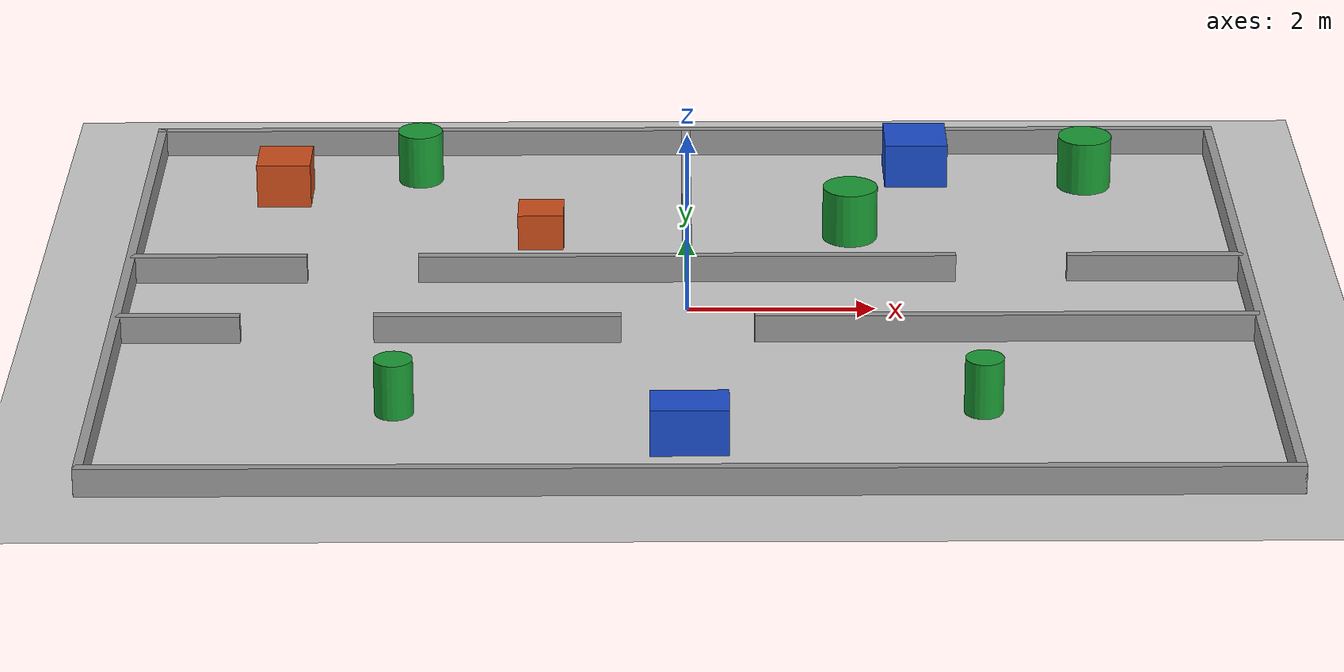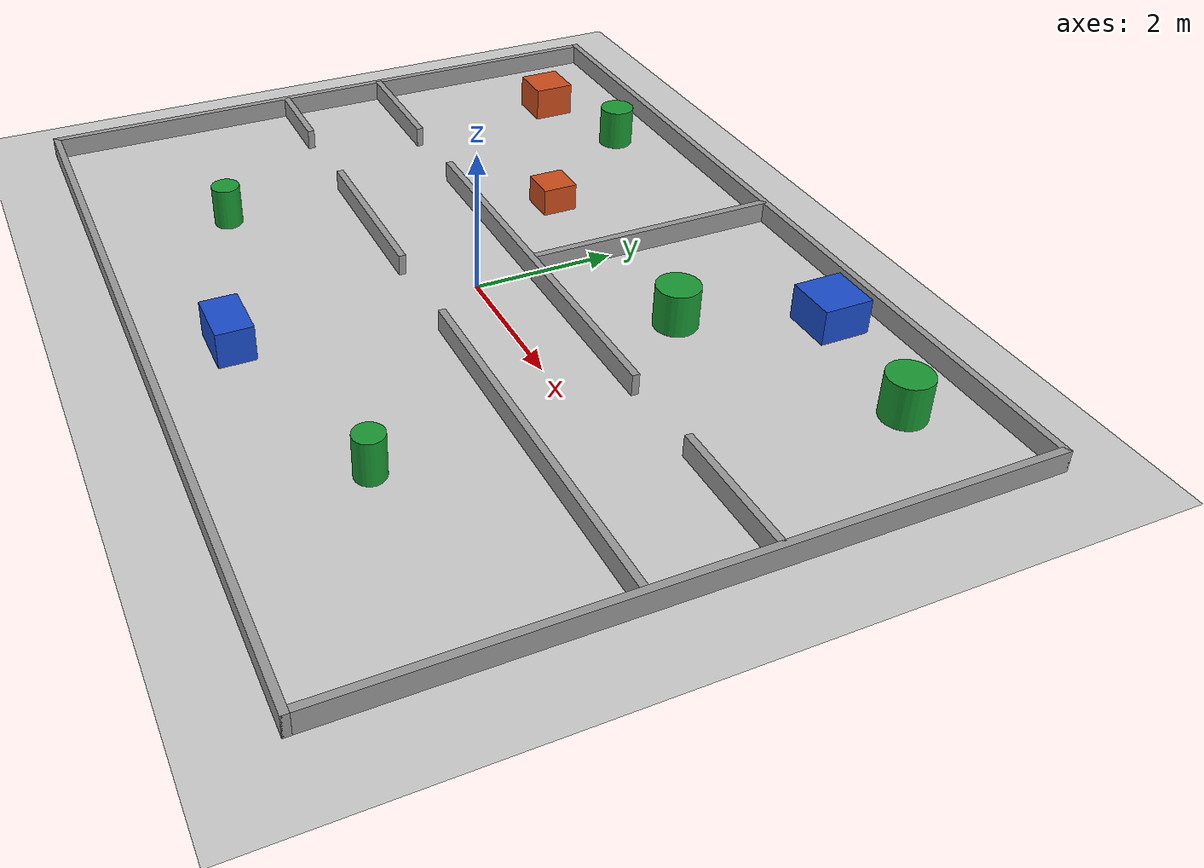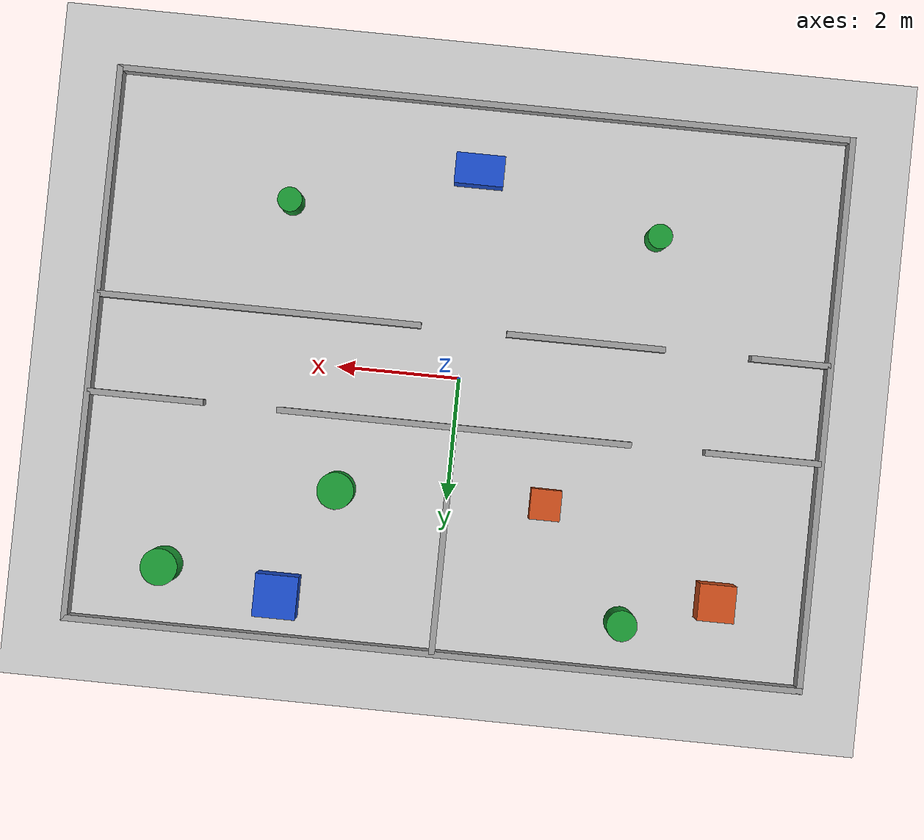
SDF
<?xml version="1.0" ?>
<sdf version="1.8">
  <world name="obstacles2">

    <plugin filename="ignition-gazebo-physics-system"
            name="ignition::gazebo::systems::Physics"/>
    <plugin filename="ignition-gazebo-sensors-system"
            name="ignition::gazebo::systems::Sensors">
      <render_engine>ogre2</render_engine>
    </plugin>
    <plugin filename="ignition-gazebo-scene-broadcaster-system"
            name="ignition::gazebo::systems::SceneBroadcaster"/>
    <plugin filename="ignition-gazebo-user-commands-system"
            name="ignition::gazebo::systems::UserCommands"/>

    <light type="directional" name="sun">
      <cast_shadows>true</cast_shadows>
      <pose>0 0 10 0 0 0</pose>
      <diffuse>0.8 0.8 0.8 1</diffuse>
      <specular>0.2 0.2 0.2 1</specular>
      <direction>-0.5 0.1 -0.9</direction>
    </light>

    <model name="ground_plane">
      <static>true</static>
      <link name="link">
        <collision name="collision">
          <geometry><plane><normal>0 0 1</normal><size>100 100</size></plane></geometry>
          <surface><friction><ode><mu>100</mu><mu2>50</mu2></ode></friction></surface>
        </collision>
        <visual name="visual">
          <geometry><plane><normal>0 0 1</normal><size>100 100</size></plane></geometry>
          <material>
            <ambient>0.8 0.8 0.8 1</ambient>
            <diffuse>0.8 0.8 0.8 1</diffuse>
          </material>
        </visual>
      </link>
    </model>

    <!-- Recinto cerrado de 12 x 9 m, paredes de 0.3 m de alto -->
    <model name="walls">
      <static>true</static>
      <link name="wall_north">
        <pose>0 4.5 0.15 0 0 0</pose>
        <collision name="c"><geometry><box><size>12.1 0.1 0.3</size></box></geometry></collision>
        <visual name="v"><geometry><box><size>12.1 0.1 0.3</size></box></geometry>
          <material><ambient>0.6 0.6 0.6 1</ambient><diffuse>0.6 0.6 0.6 1</diffuse></material></visual>
      </link>
      <link name="wall_south">
        <pose>0 -4.5 0.15 0 0 0</pose>
        <collision name="c"><geometry><box><size>12.1 0.1 0.3</size></box></geometry></collision>
        <visual name="v"><geometry><box><size>12.1 0.1 0.3</size></box></geometry>
          <material><ambient>0.6 0.6 0.6 1</ambient><diffuse>0.6 0.6 0.6 1</diffuse></material></visual>
      </link>
      <link name="wall_east">
        <pose>6 0 0.15 0 0 0</pose>
        <collision name="c"><geometry><box><size>0.1 9.1 0.3</size></box></geometry></collision>
        <visual name="v"><geometry><box><size>0.1 9.1 0.3</size></box></geometry>
          <material><ambient>0.6 0.6 0.6 1</ambient><diffuse>0.6 0.6 0.6 1</diffuse></material></visual>
      </link>
      <link name="wall_west">
        <pose>-6 0 0.15 0 0 0</pose>
        <collision name="c"><geometry><box><size>0.1 9.1 0.3</size></box></geometry></collision>
        <visual name="v"><geometry><box><size>0.1 9.1 0.3</size></box></geometry>
          <material><ambient>0.6 0.6 0.6 1</ambient><diffuse>0.6 0.6 0.6 1</diffuse></material></visual>
      </link>
    </model>

    <!-- Paredes interiores: pasillo este-oeste de 1.6 m (y de -0.8 a 0.8).
         Pared norte del pasillo (y = 0.8) con dos puertas de 1.2 m en
         x = -3.5 y x = 3.5, una por habitación. -->
    <model name="corridor_walls">
      <static>true</static>
      <link name="north_west_seg">
        <pose>-5.05 0.8 0.15 0 0 0</pose>
        <collision name="c"><geometry><box><size>1.9 0.1 0.3</size></box></geometry></collision>
        <visual name="v"><geometry><box><size>1.9 0.1 0.3</size></box></geometry>
          <material><ambient>0.6 0.6 0.6 1</ambient><diffuse>0.6 0.6 0.6 1</diffuse></material></visual>
      </link>
      <link name="north_mid_seg">
        <pose>0 0.8 0.15 0 0 0</pose>
        <collision name="c"><geometry><box><size>5.8 0.1 0.3</size></box></geometry></collision>
        <visual name="v"><geometry><box><size>5.8 0.1 0.3</size></box></geometry>
          <material><ambient>0.6 0.6 0.6 1</ambient><diffuse>0.6 0.6 0.6 1</diffuse></material></visual>
      </link>
      <link name="north_east_seg">
        <pose>5.05 0.8 0.15 0 0 0</pose>
        <collision name="c"><geometry><box><size>1.9 0.1 0.3</size></box></geometry></collision>
        <visual name="v"><geometry><box><size>1.9 0.1 0.3</size></box></geometry>
          <material><ambient>0.6 0.6 0.6 1</ambient><diffuse>0.6 0.6 0.6 1</diffuse></material></visual>
      </link>
      <link name="south_west_seg">
        <pose>-5.35 -0.8 0.15 0 0 0</pose>
        <collision name="c"><geometry><box><size>1.3 0.1 0.3</size></box></geometry></collision>
        <visual name="v"><geometry><box><size>1.3 0.1 0.3</size></box></geometry>
          <material><ambient>0.6 0.6 0.6 1</ambient><diffuse>0.6 0.6 0.6 1</diffuse></material></visual>
      </link>
      <link name="south_mid_seg">
        <pose>-2.0 -0.8 0.15 0 0 0</pose>
        <collision name="c"><geometry><box><size>2.6 0.1 0.3</size></box></geometry></collision>
        <visual name="v"><geometry><box><size>2.6 0.1 0.3</size></box></geometry>
          <material><ambient>0.6 0.6 0.6 1</ambient><diffuse>0.6 0.6 0.6 1</diffuse></material></visual>
      </link>
      <link name="south_east_seg">
        <pose>3.35 -0.8 0.15 0 0 0</pose>
        <collision name="c"><geometry><box><size>5.3 0.1 0.3</size></box></geometry></collision>
        <visual name="v"><geometry><box><size>5.3 0.1 0.3</size></box></geometry>
          <material><ambient>0.6 0.6 0.6 1</ambient><diffuse>0.6 0.6 0.6 1</diffuse></material></visual>
      </link>
      <!-- Divisoria entre habitación 1 (oeste) y habitación 2 (este) -->
      <link name="room_divider">
        <pose>0 2.65 0.15 0 0 0</pose>
        <collision name="c"><geometry><box><size>0.1 3.7 0.3</size></box></geometry></collision>
        <visual name="v"><geometry><box><size>0.1 3.7 0.3</size></box></geometry>
          <material><ambient>0.6 0.6 0.6 1</ambient><diffuse>0.6 0.6 0.6 1</diffuse></material></visual>
      </link>
    </model>

    <!-- Habitación 1 (noroeste): dos cajas y un cilindro -->
    <model name="box_1">
      <static>true</static>
      <pose>-4.5 3.2 0.25 0 0 0</pose>
      <link name="link">
        <collision name="c"><geometry><box><size>0.6 0.6 0.5</size></box></geometry></collision>
        <visual name="v"><geometry><box><size>0.6 0.6 0.5</size></box></geometry>
          <material><ambient>0.8 0.3 0.1 1</ambient><diffuse>0.8 0.3 0.1 1</diffuse></material></visual>
      </link>
    </model>

    <model name="box_2">
      <static>true</static>
      <pose>-1.6 1.9 0.2 0 0 0</pose>
      <link name="link">
        <collision name="c"><geometry><box><size>0.5 0.5 0.4</size></box></geometry></collision>
        <visual name="v"><geometry><box><size>0.5 0.5 0.4</size></box></geometry>
          <material><ambient>0.8 0.3 0.1 1</ambient><diffuse>0.8 0.3 0.1 1</diffuse></material></visual>
      </link>
    </model>

    <model name="cylinder_1">
      <static>true</static>
      <pose>-3.0 3.7 0.3 0 0 0</pose>
      <link name="link">
        <collision name="c"><geometry><cylinder><radius>0.25</radius><length>0.6</length></cylinder></geometry></collision>
        <visual name="v"><geometry><cylinder><radius>0.25</radius><length>0.6</length></cylinder></geometry>
          <material><ambient>0.1 0.6 0.2 1</ambient><diffuse>0.1 0.6 0.2 1</diffuse></material></visual>
      </link>
    </model>

    <!-- Habitación 2 (noreste): dos cilindros y una caja -->
    <model name="cylinder_2">
      <static>true</static>
      <pose>1.8 2.0 0.3 0 0 0</pose>
      <link name="link">
        <collision name="c"><geometry><cylinder><radius>0.3</radius><length>0.6</length></cylinder></geometry></collision>
        <visual name="v"><geometry><cylinder><radius>0.3</radius><length>0.6</length></cylinder></geometry>
          <material><ambient>0.1 0.6 0.2 1</ambient><diffuse>0.1 0.6 0.2 1</diffuse></material></visual>
      </link>
    </model>

    <model name="cylinder_3">
      <static>true</static>
      <pose>4.5 3.5 0.3 0 0 0</pose>
      <link name="link">
        <collision name="c"><geometry><cylinder><radius>0.3</radius><length>0.6</length></cylinder></geometry></collision>
        <visual name="v"><geometry><cylinder><radius>0.3</radius><length>0.6</length></cylinder></geometry>
          <material><ambient>0.1 0.6 0.2 1</ambient><diffuse>0.1 0.6 0.2 1</diffuse></material></visual>
      </link>
    </model>

    <model name="box_3">
      <static>true</static>
      <pose>2.6 3.8 0.25 0 0 0</pose>
      <link name="link">
        <collision name="c"><geometry><box><size>0.7 0.7 0.5</size></box></geometry></collision>
        <visual name="v"><geometry><box><size>0.7 0.7 0.5</size></box></geometry>
          <material><ambient>0.1 0.3 0.8 1</ambient><diffuse>0.1 0.3 0.8 1</diffuse></material></visual>
      </link>
    </model>

    <!-- Área abierta al sur: columnas y una caja, para planificar rodeos -->
    <model name="pillar_1">
      <static>true</static>
      <pose>-3.0 -2.6 0.3 0 0 0</pose>
      <link name="link">
        <collision name="c"><geometry><cylinder><radius>0.2</radius><length>0.6</length></cylinder></geometry></collision>
        <visual name="v"><geometry><cylinder><radius>0.2</radius><length>0.6</length></cylinder></geometry>
          <material><ambient>0.1 0.6 0.2 1</ambient><diffuse>0.1 0.6 0.2 1</diffuse></material></visual>
      </link>
    </model>

    <model name="pillar_2">
      <static>true</static>
      <pose>3.0 -2.6 0.3 0 0 0</pose>
      <link name="link">
        <collision name="c"><geometry><cylinder><radius>0.2</radius><length>0.6</length></cylinder></geometry></collision>
        <visual name="v"><geometry><cylinder><radius>0.2</radius><length>0.6</length></cylinder></geometry>
          <material><ambient>0.1 0.6 0.2 1</ambient><diffuse>0.1 0.6 0.2 1</diffuse></material></visual>
      </link>
    </model>

    <model name="box_4">
      <static>true</static>
      <pose>0 -3.4 0.25 0 0 0</pose>
      <link name="link">
        <collision name="c"><geometry><box><size>0.8 0.5 0.5</size></box></geometry></collision>
        <visual name="v"><geometry><box><size>0.8 0.5 0.5</size></box></geometry>
          <material><ambient>0.1 0.3 0.8 1</ambient><diffuse>0.1 0.3 0.8 1</diffuse></material></visual>
      </link>
    </model>

  </world>
</sdf>
